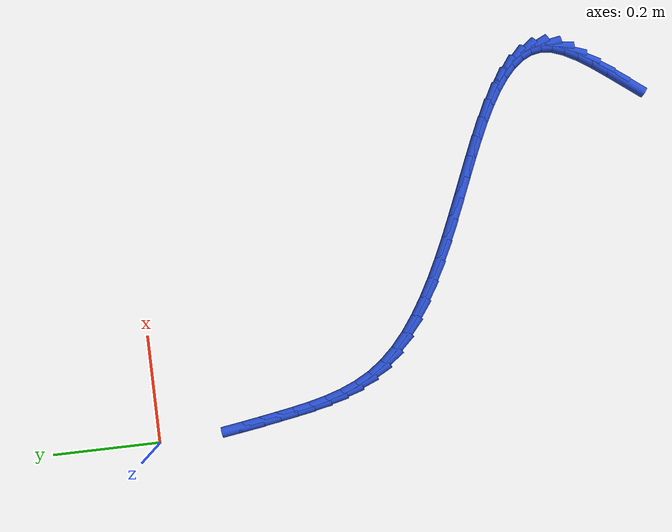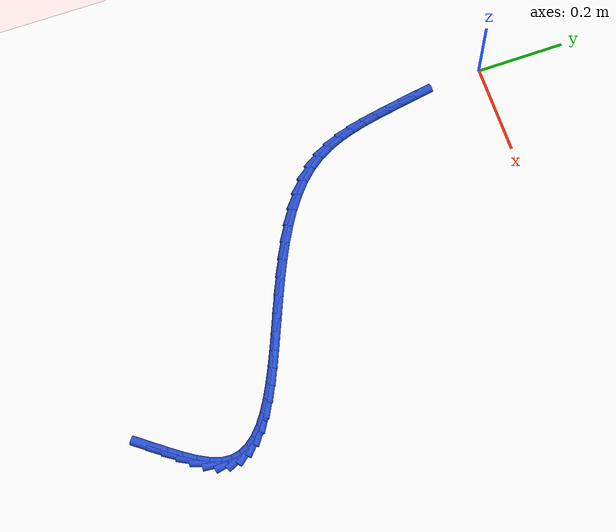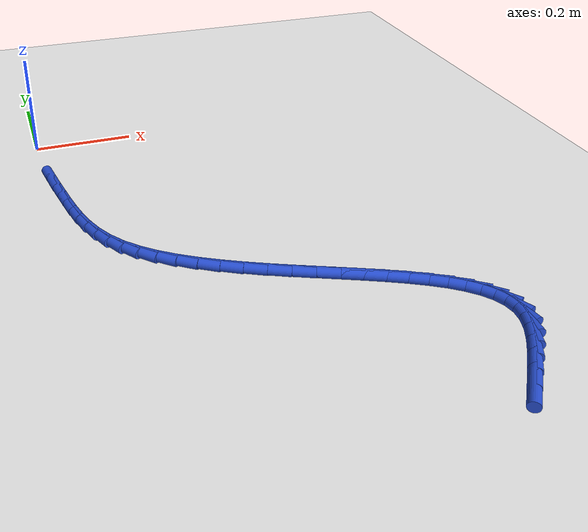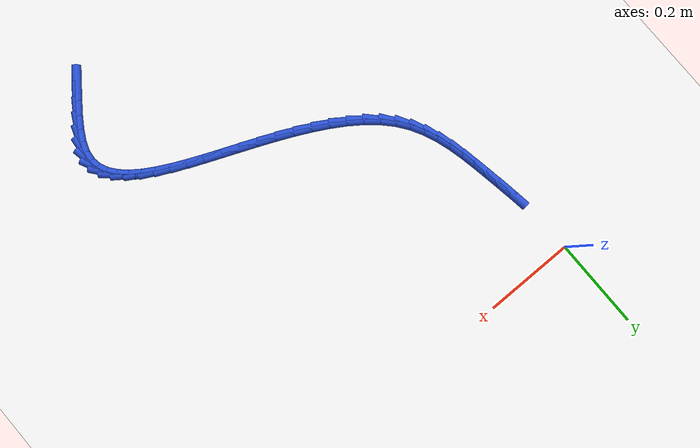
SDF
<sdf version="1.6">
 <world name="default">
  <model name="ground_plane">
   <static>1</static>
   <link name="link">
    <collision name="collision">
     <geometry><plane><normal>0 0 1</normal><size>100 100</size></plane></geometry>
     <surface><friction><ode><mu>100</mu><mu2>50</mu2></ode></friction></surface>
    </collision>
    <visual name="visual">
     <cast_shadows>0</cast_shadows>
     <geometry><plane><normal>0 0 1</normal><size>100 100</size></plane></geometry>
     <material>
      <script><uri>file://media/materials/scripts/gazebo.material</uri><name>Gazebo/WhiteGlow</name></script>
     </material>
    </visual>
   </link>
  </model>
  <model name="line">
   <link name="link_250">
    <pose>0.5675076397229225 -0.9316943679823528 0.01 0 1.57 0.9214324739149604</pose>
    <collision name="collision">
     <geometry><cylinder><radius>0.01</radius><length>0.08</length></cylinder></geometry>
    </collision>
    <visual name="visual">
     <material>
      <script><name>Gazebo/Blue</name><uri>file://media/materials/scripts/gazebo.material</uri></script>
     </material>
     <geometry><cylinder><radius>0.01</radius><length>0.08</length></cylinder></geometry>
    </visual>
   </link>
   <link name="link_251">
    <pose>0.5887351453721831 -0.9037340480802026 0.01 0 1.57 0.9416323100738306</pose>
    <collision name="collision">
     <geometry><cylinder><radius>0.01</radius><length>0.08</length></cylinder></geometry>
    </collision>
    <visual name="visual">
     <material>
      <script><name>Gazebo/Blue</name><uri>file://media/materials/scripts/gazebo.material</uri></script>
     </material>
     <geometry><cylinder><radius>0.01</radius><length>0.08</length></cylinder></geometry>
    </visual>
   </link>
   <link name="link_252">
    <pose>0.6083107147059242 -0.876838437982357 0.01 0 1.57 0.9909942119246229</pose>
    <collision name="collision">
     <geometry><cylinder><radius>0.01</radius><length>0.08</length></cylinder></geometry>
    </collision>
    <visual name="visual">
     <material>
      <script><name>Gazebo/Blue</name><uri>file://media/materials/scripts/gazebo.material</uri></script>
     </material>
     <geometry><cylinder><radius>0.01</radius><length>0.08</length></cylinder></geometry>
    </visual>
   </link>
   <link name="link_253">
    <pose>0.6251569691944987 -0.8511144749388544 0.01 0 1.57 1.0807744846686314</pose>
    <collision name="collision">
     <geometry><cylinder><radius>0.01</radius><length>0.08</length></cylinder></geometry>
    </collision>
    <visual name="visual">
     <material>
      <script><name>Gazebo/Blue</name><uri>file://media/materials/scripts/gazebo.material</uri></script>
     </material>
     <geometry><cylinder><radius>0.01</radius><length>0.08</length></cylinder></geometry>
    </visual>
   </link>
   <link name="link_254">
    <pose>0.638196530308259 -0.8266690961997323 0.01 0 1.57 1.2308592558638867</pose>
    <collision name="collision">
     <geometry><cylinder><radius>0.01</radius><length>0.08</length></cylinder></geometry>
    </collision>
    <visual name="visual">
     <material>
      <script><name>Gazebo/Blue</name><uri>file://media/materials/scripts/gazebo.material</uri></script>
     </material>
     <geometry><cylinder><radius>0.01</radius><length>0.08</length></cylinder></geometry>
    </visual>
   </link>
   <link name="link_255">
    <pose>0.6463520195175574 -0.803609239015029 0.01 0 1.57 1.46552783377357</pose>
    <collision name="collision">
     <geometry><cylinder><radius>0.01</radius><length>0.08</length></cylinder></geometry>
    </collision>
    <visual name="visual">
     <material>
      <script><name>Gazebo/Blue</name><uri>file://media/materials/scripts/gazebo.material</uri></script>
     </material>
     <geometry><cylinder><radius>0.01</radius><length>0.08</length></cylinder></geometry>
    </visual>
   </link>
   <link name="link_256">
    <pose>0.648632377931085 -0.7820270078195289 0.01 0 1.57 -1.3910353354257887</pose>
    <collision name="collision">
     <geometry><cylinder><radius>0.01</radius><length>0.08</length></cylinder></geometry>
    </collision>
    <visual name="visual">
     <material>
      <script><name>Gazebo/Blue</name><uri>file://media/materials/scripts/gazebo.material</uri></script>
     </material>
     <geometry><cylinder><radius>0.01</radius><length>0.08</length></cylinder></geometry>
    </visual>
   </link>
   <link name="link_257">
    <pose>0.6449669140903632 -0.7618563548550757 0.01 0 1.57 -1.1214119436338499</pose>
    <collision name="collision">
     <geometry><cylinder><radius>0.01</radius><length>0.08</length></cylinder></geometry>
    </collision>
    <visual name="visual">
     <material>
      <script><name>Gazebo/Blue</name><uri>file://media/materials/scripts/gazebo.material</uri></script>
     </material>
     <geometry><cylinder><radius>0.01</radius><length>0.08</length></cylinder></geometry>
    </visual>
   </link>
   <link name="link_258">
    <pose>0.6358415061946128 -0.7429355936992693 0.01 0 1.57 -0.9020803894749716</pose>
    <collision name="collision">
     <geometry><cylinder><radius>0.01</radius><length>0.08</length></cylinder></geometry>
    </collision>
    <visual name="visual">
     <material>
      <script><name>Gazebo/Blue</name><uri>file://media/materials/scripts/gazebo.material</uri></script>
     </material>
     <geometry><cylinder><radius>0.01</radius><length>0.08</length></cylinder></geometry>
    </visual>
   </link>
   <link name="link_259">
    <pose>0.6217497713137167 -0.7251017081136794 0.01 0 1.57 -0.7387950540690376</pose>
    <collision name="collision">
     <geometry><cylinder><radius>0.01</radius><length>0.08</length></cylinder></geometry>
    </collision>
    <visual name="visual">
     <material>
      <script><name>Gazebo/Blue</name><uri>file://media/materials/scripts/gazebo.material</uri></script>
     </material>
     <geometry><cylinder><radius>0.01</radius><length>0.08</length></cylinder></geometry>
    </visual>
   </link>
   <link name="link_260">
    <pose>0.6031853265175582 -0.7081916818598759 0.01 0 1.57 -0.6216185607318698</pose>
    <collision name="collision">
     <geometry><cylinder><radius>0.01</radius><length>0.08</length></cylinder></geometry>
    </collision>
    <visual name="visual">
     <material>
      <script><name>Gazebo/Blue</name><uri>file://media/materials/scripts/gazebo.material</uri></script>
     </material>
     <geometry><cylinder><radius>0.01</radius><length>0.08</length></cylinder></geometry>
    </visual>
   </link>
   <link name="link_261">
    <pose>0.58064178887602 -0.6920424986994286 0.01 0 1.57 -0.5385515141093715</pose>
    <collision name="collision">
     <geometry><cylinder><radius>0.01</radius><length>0.08</length></cylinder></geometry>
    </collision>
    <visual name="visual">
     <material>
      <script><name>Gazebo/Blue</name><uri>file://media/materials/scripts/gazebo.material</uri></script>
     </material>
     <geometry><cylinder><radius>0.01</radius><length>0.08</length></cylinder></geometry>
    </visual>
   </link>
   <link name="link_262">
    <pose>0.5546127754589854 -0.6764911423939073 0.01 0 1.57 -0.4802159067695036</pose>
    <collision name="collision">
     <geometry><cylinder><radius>0.01</radius><length>0.08</length></cylinder></geometry>
    </collision>
    <visual name="visual">
     <material>
      <script><name>Gazebo/Blue</name><uri>file://media/materials/scripts/gazebo.material</uri></script>
     </material>
     <geometry><cylinder><radius>0.01</radius><length>0.08</length></cylinder></geometry>
    </visual>
   </link>
   <link name="link_263">
    <pose>0.525591903336337 -0.6613745967048814 0.01 0 1.57 -0.440160131896553</pose>
    <collision name="collision">
     <geometry><cylinder><radius>0.01</radius><length>0.08</length></cylinder></geometry>
    </collision>
    <visual name="visual">
     <material>
      <script><name>Gazebo/Blue</name><uri>file://media/materials/scripts/gazebo.material</uri></script>
     </material>
     <geometry><cylinder><radius>0.01</radius><length>0.08</length></cylinder></geometry>
    </visual>
   </link>
   <link name="link_264">
    <pose>0.49407278957795797 -0.6465298453939211 0.01 0 1.57 -0.414145150741968</pose>
    <collision name="collision">
     <geometry><cylinder><radius>0.01</radius><length>0.08</length></cylinder></geometry>
    </collision>
    <visual name="visual">
     <material>
      <script><name>Gazebo/Blue</name><uri>file://media/materials/scripts/gazebo.material</uri></script>
     </material>
     <geometry><cylinder><radius>0.01</radius><length>0.08</length></cylinder></geometry>
    </visual>
   </link>
   <link name="link_265">
    <pose>0.4605490512537324 -0.6317938722225963 0.01 0 1.57 -0.3994613032999315</pose>
    <collision name="collision">
     <geometry><cylinder><radius>0.01</radius><length>0.08</length></cylinder></geometry>
    </collision>
    <visual name="visual">
     <material>
      <script><name>Gazebo/Blue</name><uri>file://media/materials/scripts/gazebo.material</uri></script>
     </material>
     <geometry><cylinder><radius>0.01</radius><length>0.08</length></cylinder></geometry>
    </visual>
   </link>
   <link name="link_266">
    <pose>0.4255143054335411 -0.6170036609524758 0.01 0 1.57 -0.39445409701106454</pose>
    <collision name="collision">
     <geometry><cylinder><radius>0.01</radius><length>0.08</length></cylinder></geometry>
    </collision>
    <visual name="visual">
     <material>
      <script><name>Gazebo/Blue</name><uri>file://media/materials/scripts/gazebo.material</uri></script>
     </material>
     <geometry><cylinder><radius>0.01</radius><length>0.08</length></cylinder></geometry>
    </visual>
   </link>
   <link name="link_267">
    <pose>0.389462169187268 -0.6019961953451302 0.01 0 1.57 -0.39822870928385584</pose>
    <collision name="collision">
     <geometry><cylinder><radius>0.01</radius><length>0.08</length></cylinder></geometry>
    </collision>
    <visual name="visual">
     <material>
      <script><name>Gazebo/Blue</name><uri>file://media/materials/scripts/gazebo.material</uri></script>
     </material>
     <geometry><cylinder><radius>0.01</radius><length>0.08</length></cylinder></geometry>
    </visual>
   </link>
   <link name="link_268">
    <pose>0.35288625958479625 -0.5866084591621287 0.01 0 1.57 -0.4104797701247603</pose>
    <collision name="collision">
     <geometry><cylinder><radius>0.01</radius><length>0.08</length></cylinder></geometry>
    </collision>
    <visual name="visual">
     <material>
      <script><name>Gazebo/Blue</name><uri>file://media/materials/scripts/gazebo.material</uri></script>
     </material>
     <geometry><cylinder><radius>0.01</radius><length>0.08</length></cylinder></geometry>
    </visual>
   </link>
   <link name="link_269">
    <pose>0.3162801936960087 -0.5706774361650413 0.01 0 1.57 -0.43140652227758114</pose>
    <collision name="collision">
     <geometry><cylinder><radius>0.01</radius><length>0.08</length></cylinder></geometry>
    </collision>
    <visual name="visual">
     <material>
      <script><name>Gazebo/Blue</name><uri>file://media/materials/scripts/gazebo.material</uri></script>
     </material>
     <geometry><cylinder><radius>0.01</radius><length>0.08</length></cylinder></geometry>
    </visual>
   </link>
   <link name="link_270">
    <pose>0.28013758859078836 -0.5540401101154377 0.01 0 1.57 -0.46168765385369476</pose>
    <collision name="collision">
     <geometry><cylinder><radius>0.01</radius><length>0.08</length></cylinder></geometry>
    </collision>
    <visual name="visual">
     <material>
      <script><name>Gazebo/Blue</name><uri>file://media/materials/scripts/gazebo.material</uri></script>
     </material>
     <geometry><cylinder><radius>0.01</radius><length>0.08</length></cylinder></geometry>
    </visual>
   </link>
   <link name="link_271">
    <pose>0.24495206133901817 -0.5365334647748878 0.01 0 1.57 -0.5024977415279164</pose>
    <collision name="collision">
     <geometry><cylinder><radius>0.01</radius><length>0.08</length></cylinder></geometry>
    </collision>
    <visual name="visual">
     <material>
      <script><name>Gazebo/Blue</name><uri>file://media/materials/scripts/gazebo.material</uri></script>
     </material>
     <geometry><cylinder><radius>0.01</radius><length>0.08</length></cylinder></geometry>
    </visual>
   </link>
   <link name="link_272">
    <pose>0.21121722901058113 -0.5179944839049612 0.01 0 1.57 -0.5555456327086864</pose>
    <collision name="collision">
     <geometry><cylinder><radius>0.01</radius><length>0.08</length></cylinder></geometry>
    </collision>
    <visual name="visual">
     <material>
      <script><name>Gazebo/Blue</name><uri>file://media/materials/scripts/gazebo.material</uri></script>
     </material>
     <geometry><cylinder><radius>0.01</radius><length>0.08</length></cylinder></geometry>
    </visual>
   </link>
   <link name="link_273">
    <pose>0.1794267086753603 -0.4982601512672278 0.01 0 1.57 -0.6230988124249942</pose>
    <collision name="collision">
     <geometry><cylinder><radius>0.01</radius><length>0.08</length></cylinder></geometry>
    </collision>
    <visual name="visual">
     <material>
      <script><name>Gazebo/Blue</name><uri>file://media/materials/scripts/gazebo.material</uri></script>
     </material>
     <geometry><cylinder><radius>0.01</radius><length>0.08</length></cylinder></geometry>
    </visual>
   </link>
   <link name="link_274">
    <pose>0.15007411740323856 -0.47716745062325705 0.01 0 1.57 -0.7079161848620458</pose>
    <collision name="collision">
     <geometry><cylinder><radius>0.01</radius><length>0.08</length></cylinder></geometry>
    </collision>
    <visual name="visual">
     <material>
      <script><name>Gazebo/Blue</name><uri>file://media/materials/scripts/gazebo.material</uri></script>
     </material>
     <geometry><cylinder><radius>0.01</radius><length>0.08</length></cylinder></geometry>
    </visual>
   </link>
   <link name="link_275">
    <pose>0.12365307226409895 -0.45455336573461885 0.01 0 1.57 -0.8129336666703615</pose>
    <collision name="collision">
     <geometry><cylinder><radius>0.01</radius><length>0.08</length></cylinder></geometry>
    </collision>
    <visual name="visual">
     <material>
      <script><name>Gazebo/Blue</name><uri>file://media/materials/scripts/gazebo.material</uri></script>
     </material>
     <geometry><cylinder><radius>0.01</radius><length>0.08</length></cylinder></geometry>
    </visual>
   </link>
   <link name="link_276">
    <pose>0.10065719032782443 -0.4302548803628831 0.01 0 1.57 -0.9391959139816523</pose>
    <collision name="collision">
     <geometry><cylinder><radius>0.01</radius><length>0.08</length></cylinder></geometry>
    </collision>
    <visual name="visual">
     <material>
      <script><name>Gazebo/Blue</name><uri>file://media/materials/scripts/gazebo.material</uri></script>
     </material>
     <geometry><cylinder><radius>0.01</radius><length>0.08</length></cylinder></geometry>
    </visual>
   </link>
   <link name="link_277">
    <pose>0.08154154791081364 -0.40412522255848604 0.01 0 1.57 -1.0666665527531913</pose>
    <collision name="collision">
     <geometry><cylinder><radius>0.01</radius><length>0.08</length></cylinder></geometry>
    </collision>
    <visual name="visual">
     <material>
      <script><name>Gazebo/Blue</name><uri>file://media/materials/scripts/gazebo.material</uri></script>
     </material>
     <geometry><cylinder><radius>0.01</radius><length>0.08</length></cylinder></geometry>
    </visual>
   </link>
   <link name="link_278">
    <pose>0.06617219422301658 -0.3762658855354239 0.01 0 1.57 -1.1756814012183527</pose>
    <collision name="collision">
     <geometry><cylinder><radius>0.01</radius><length>0.08</length></cylinder></geometry>
    </collision>
    <visual name="visual">
     <material>
      <script><name>Gazebo/Blue</name><uri>file://media/materials/scripts/gazebo.material</uri></script>
     </material>
     <geometry><cylinder><radius>0.01</radius><length>0.08</length></cylinder></geometry>
    </visual>
   </link>
   <link name="link_279">
    <pose>0.0539553472208171 -0.34697217376039535 0.01 0 1.57 -1.263077678734671</pose>
    <collision name="collision">
     <geometry><cylinder><radius>0.01</radius><length>0.08</length></cylinder></geometry>
    </collision>
    <visual name="visual">
     <material>
      <script><name>Gazebo/Blue</name><uri>file://media/materials/scripts/gazebo.material</uri></script>
     </material>
     <geometry><cylinder><radius>0.01</radius><length>0.08</length></cylinder></geometry>
    </visual>
   </link>
   <link name="link_280">
    <pose>0.044285020921308614 -0.316544535458258 0.01 0 1.57 -1.3283930840441027</pose>
    <collision name="collision">
     <geometry><cylinder><radius>0.01</radius><length>0.08</length></cylinder></geometry>
    </collision>
    <visual name="visual">
     <material>
      <script><name>Gazebo/Blue</name><uri>file://media/materials/scripts/gazebo.material</uri></script>
     </material>
     <geometry><cylinder><radius>0.01</radius><length>0.08</length></cylinder></geometry>
    </visual>
   </link>
   <link name="link_281">
    <pose>0.036555229341583693 -0.285283418853866 0.01 0 1.57 -1.3722997698535342</pose>
    <collision name="collision">
     <geometry><cylinder><radius>0.01</radius><length>0.08</length></cylinder></geometry>
    </collision>
    <visual name="visual">
     <material>
      <script><name>Gazebo/Blue</name><uri>file://media/materials/scripts/gazebo.material</uri></script>
     </material>
     <geometry><cylinder><radius>0.01</radius><length>0.08</length></cylinder></geometry>
    </visual>
   </link>
   <link name="link_282">
    <pose>0.030159986498735896 -0.25348927217207734 0.01 0 1.57 -1.3956728429106462</pose>
    <collision name="collision">
     <geometry><cylinder><radius>0.01</radius><length>0.08</length></cylinder></geometry>
    </collision>
    <visual name="visual">
     <material>
      <script><name>Gazebo/Blue</name><uri>file://media/materials/scripts/gazebo.material</uri></script>
     </material>
     <geometry><cylinder><radius>0.01</radius><length>0.08</length></cylinder></geometry>
    </visual>
   </link>
   <link name="link_283">
    <pose>0.024493306409858362 -0.22146254363774814 0.01 0 1.57 -1.401404075846443</pose>
    <collision name="collision">
     <geometry><cylinder><radius>0.01</radius><length>0.08</length></cylinder></geometry>
    </collision>
    <visual name="visual">
     <material>
      <script><name>Gazebo/Blue</name><uri>file://media/materials/scripts/gazebo.material</uri></script>
     </material>
     <geometry><cylinder><radius>0.01</radius><length>0.08</length></cylinder></geometry>
    </visual>
   </link>
   <link name="link_284">
    <pose>0.019022925907429166 -0.18947785586012572 0.01 0 1.57 -1.4072753639244553</pose>
    <collision name="collision">
     <geometry><cylinder><radius>0.01</radius><length>0.08</length></cylinder></geometry>
    </collision>
    <visual name="visual">
     <material>
      <script><name>Gazebo/Blue</name><uri>file://media/materials/scripts/gazebo.material</uri></script>
     </material>
     <geometry><cylinder><radius>0.01</radius><length>0.08</length></cylinder></geometry>
    </visual>
   </link>
   <link name="link_285">
    <pose>0.013766123142073376 -0.15761732329789396 0.01 0 1.57 -1.4213944131788643</pose>
    <collision name="collision">
     <geometry><cylinder><radius>0.01</radius><length>0.08</length></cylinder></geometry>
    </collision>
    <visual name="visual">
     <material>
      <script><name>Gazebo/Blue</name><uri>file://media/materials/scripts/gazebo.material</uri></script>
     </material>
     <geometry><cylinder><radius>0.01</radius><length>0.08</length></cylinder></geometry>
    </visual>
   </link>
  </model>
 </world>
</sdf>
